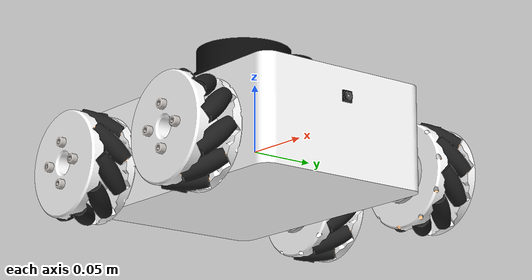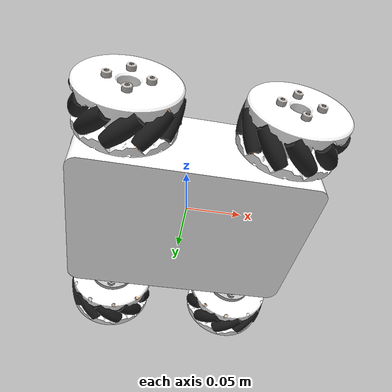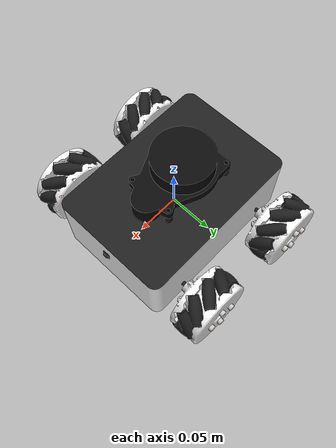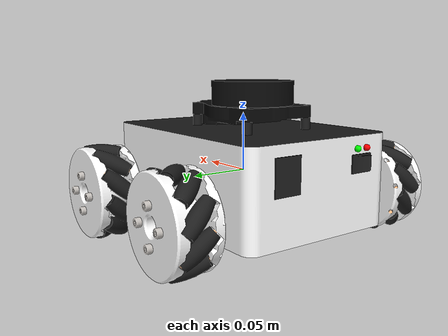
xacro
<?xml version="1.0"?>
<robot xmlns:xacro="http://www.ros.org/wiki/xacro" name="omnibot">

  <xacro:property name="base_length" value="0.200"/>
  <xacro:property name="base_width" value="0.140"/>
  <xacro:property name="base_height" value="0.0764"/>

  <xacro:property name="wheel_width" value="0.036"/>
  <xacro:property name="wheel_radius" value="0.039"/>

  <xacro:property name="wheel_x_offset" value="0.06"/>
  <xacro:property name="wheel_y_offset" value="${base_width/2 + wheel_width/2 + 0.0165}"/>
  <xacro:property name="wheel_z_offset" value="${-base_height/2 + 0.0228}"/>

  <xacro:property name="M_PI" value="3.14159"/>

  <xacro:include filename="$(find omnibot_description)/urdf/base.urdf.xacro"/>
  <xacro:include filename="$(find omnibot_description)/urdf/wheel.urdf.xacro"/>
  <xacro:include filename="$(find omnibot_description)/urdf/sensors.urdf.xacro"/>

  <xacro:omnibot_base/>

  <xacro:omnibot_wheel prefix="front_left">
    <origin xyz="${wheel_x_offset} ${wheel_y_offset} ${wheel_z_offset}" rpy="0.0 0.0 0.0"/>
  </xacro:omnibot_wheel>
  <xacro:omnibot_wheel prefix="front_right">
    <origin xyz="${wheel_x_offset} ${-wheel_y_offset} ${wheel_z_offset}" rpy="0.0 0.0 0.0"/>
  </xacro:omnibot_wheel>
  <xacro:omnibot_wheel prefix="back_left">
    <origin xyz="${-wheel_x_offset} ${wheel_y_offset} ${wheel_z_offset}" rpy="0.0 0.0 0.0"/>
  </xacro:omnibot_wheel>
  <xacro:omnibot_wheel prefix="back_right">
    <origin xyz="${-wheel_x_offset} ${-wheel_y_offset} ${wheel_z_offset}" rpy="0.0 0.0 0.0"/>
  </xacro:omnibot_wheel>

  <xacro:imu>
    <origin xyz="0.0 0.0 0.0" rpy="0.0 0.0 0.0"/>
  </xacro:imu>

  <xacro:lidar>
    <origin xyz="-0.013 0.0 ${base_height/2 + 0.024}" rpy="0.0 0.0 0.0"/>
  </xacro:lidar>

  <xacro:camera>
    <origin xyz="${base_length/2 - 0.0014} 0.0 0.018" rpy="0.0 0.0 0.0"/>
  </xacro:camera>

  <gazebo>
    <plugin filename="libignition-gazebo-joint-state-publisher-system.so"
            name="ignition::gazebo::systems::JointStatePublisher"/>

    <plugin
      filename="libOmniDrive.so"
      name="omni_drive::OmniDrive">
      <reference_frame>base_link</reference_frame>
      <frame_id>odom</frame_id>
      <child_frame_id>base_link</child_frame_id>
      <front_left_joint>front_left_wheel_joint</front_left_joint>
      <rear_left_joint>back_left_wheel_joint</rear_left_joint>
      <front_right_joint>front_right_wheel_joint</front_right_joint>
      <rear_right_joint>back_right_wheel_joint</rear_right_joint>
      <wheel_front_rear_separation>0.12</wheel_front_rear_separation>
      <wheel_right_left_separation>0.21</wheel_right_left_separation>
      <wheel_radius>0.039</wheel_radius>
      <min_velocity_linear>-1.0</min_velocity_linear>
      <max_velocity_linear>1.0</max_velocity_linear>
      <min_velocity_angular>-2.0</min_velocity_angular>
      <max_velocity_angular>2.0</max_velocity_angular>
    </plugin>

  </gazebo>

</robot>

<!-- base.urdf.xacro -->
<robot xmlns:xacro="http://www.ros.org/wiki/xacro" name="omnibot_base">

  <xacro:macro name="omnibot_base">

    <link name="base_link">
      <inertial>
        <origin xyz="0.0 0.0 -0.013" rpy="0.0 0.0 0.0"/>
        <mass value="2.067"/>
        <inertia ixx="0.00465053" ixy="1.014e-6" ixz="-1.413e-5" iyy="0.00771714" iyz="2.949e-6" izz="0.01114849"/>
      </inertial>
      <visual>
        <origin xyz="0.0 0.0 0.0" rpy="0.0 0.0 0.0"/>
        <geometry>
          <mesh filename="$(find omnibot_description)/meshes/base_link.dae"/>
        </geometry>
      </visual>
      <collision>
        <origin xyz="0.0 0.0 0.0" rpy="0.0 0.0 0.0"/>
        <geometry>
          <box size="${base_length} ${base_width} ${base_height}"/>
        </geometry>
      </collision>
    </link>

    <link name="base_footprint"/>

    <joint name="base_joint" type="fixed">
      <parent link="base_link"/>
      <child link="base_footprint"/>
      <origin xyz="0.0 0.0 ${-(wheel_radius-wheel_z_offset)}" rpy="0 0 0"/>
    </joint>

  </xacro:macro>

</robot>

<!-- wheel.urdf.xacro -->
<robot xmlns:xacro="http://www.ros.org/wiki/xacro" name="omnibot_wheel">

  <xacro:macro name="omnibot_wheel" params="prefix *joint_pose">
    <link name="${prefix}_wheel_link">
      <visual>
        <origin xyz="0.0 0.0 0.0" rpy="0.0 0.0 0.0"/>
        <geometry>
          <mesh filename="$(find omnibot_description)/meshes/mecanum_wheel_${prefix}.dae"/>
        </geometry>
      </visual>
      <collision>
        <origin xyz="0.0 0.0 0.0" rpy="${-M_PI/2} 0.0 0.0"/>
        <geometry>
          <cylinder radius="${wheel_radius}" length="${wheel_width}"/>
        </geometry>
      </collision>
      <inertial>
        <origin xyz="0.0 0.0 0.0" rpy="0.0 0.0 0.0"/>
        <mass value="0.120"/>
        <inertia ixx="6.278e-5" ixy="2.396e-10" ixz="4.709e-11" iyy="9.349e-5" iyz="-1.916e-10" izz="6.278e-5"/>
      </inertial>
    </link>

    <joint name="${prefix}_wheel_joint" type="continuous">
      <xacro:insert_block name="joint_pose"/>
      <parent link="base_link"/>
      <child link="${prefix}_wheel_link"/>
      <axis xyz="0 1 0" rpy="0.0 0.0 0.0"/>
    </joint>

    <gazebo reference="${prefix}_wheel_link">
      <mu1 value="0.0"/>
      <mu2 value="0.0"/>
    </gazebo>

  </xacro:macro>

</robot>

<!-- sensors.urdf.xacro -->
<robot xmlns:xacro="http://www.ros.org/wiki/xacro" name="omnibot_sensors">

  <!-- IMU macro -->
  <xacro:macro name="imu" params="*joint_pose">

    <link name="imu_link"/>

    <joint name="imu_joint" type="fixed">
      <parent link="base_link"/>
      <child link="imu_link"/>
      <xacro:insert_block name="joint_pose"/>
    </joint>

    <gazebo reference="imu_link">
      <sensor name="imu_sensor" type="imu">
        <always_on>1</always_on>
        <update_rate>30</update_rate>
        <topic>imu</topic>
        <visualize>true</visualize>
        <enable_metrics>true</enable_metrics>
        <angular_velocity>
          <x>
            <noise type="gaussian">
              <mean>0.0</mean>
              <stddev>2e-4</stddev>
              <bias_mean>0.0000075</bias_mean>
              <bias_stddev>0.0000008</bias_stddev>
            </noise>
          </x>
          <y>
            <noise type="gaussian">
              <mean>0.0</mean>
              <stddev>2e-4</stddev>
              <bias_mean>0.0000075</bias_mean>
              <bias_stddev>0.0000008</bias_stddev>
            </noise>
          </y>
          <z>
            <noise type="gaussian">
              <mean>0.0</mean>
              <stddev>2e-4</stddev>
              <bias_mean>0.0000075</bias_mean>
              <bias_stddev>0.0000008</bias_stddev>
            </noise>
          </z>
        </angular_velocity>
        <linear_acceleration>
          <x>
            <noise type="gaussian">
              <mean>0.0</mean>
              <stddev>1.7e-2</stddev>
              <bias_mean>0.1</bias_mean>
              <bias_stddev>0.001</bias_stddev>
            </noise>
          </x>
          <y>
            <noise type="gaussian">
              <mean>0.0</mean>
              <stddev>1.7e-2</stddev>
              <bias_mean>0.1</bias_mean>
              <bias_stddev>0.001</bias_stddev>
            </noise>
          </y>
          <z>
            <noise type="gaussian">
              <mean>0.0</mean>
              <stddev>1.7e-2</stddev>
              <bias_mean>0.1</bias_mean>
              <bias_stddev>0.001</bias_stddev>
            </noise>
          </z>
        </linear_acceleration>
      </sensor>
    </gazebo>
  </xacro:macro>

  <!-- Lidar macro -->
  <xacro:macro name="lidar" params="*joint_pose">

    <link name="lidar_link">
      <visual>
        <origin xyz="0 0 -0.014" rpy="0 0 0"/>
        <geometry>
          <mesh filename="$(find omnibot_description)/meshes/lidar.dae"/>
        </geometry>
      </visual>
      <collision>
        <origin xyz="0 0 -0.014" rpy="0 0 0"/>
        <geometry>
          <mesh filename="$(find omnibot_description)/meshes/lidar.stl"/>
        </geometry>
      </collision>
      <inertial>
        <origin xyz="0.009 0 -0.04" rpy="0 0 0"/>
        <mass value="0.165"/>
        <inertia ixx="6.790e-5" ixy="2.124e-5" ixz="0" iyy="1.305e-4" iyz="0" izz="1.572e-4" />
      </inertial>
    </link>

    <joint name="lidar_joint" type="fixed">
      <parent link="base_link"/>
      <child link="lidar_link"/>
      <xacro:insert_block name="joint_pose"/>
    </joint>

    <gazebo reference="lidar_link">

      <sensor name='gpu_lidar' type='gpu_lidar'>"
        <topic>lidar</topic>
        <update_rate>30</update_rate>
        <ray>
          <scan>
            <horizontal>
              <samples>720</samples>
              <resolution>1</resolution>
              <min_angle>-3.1415</min_angle>
              <max_angle>3.1415</max_angle>
            </horizontal>
            <vertical>
              <samples>1</samples>
              <resolution>0.01</resolution>
              <min_angle>0</min_angle>
              <max_angle>0</max_angle>
            </vertical>
          </scan>
          <range>
            <min>0.05</min>
            <max>8.0</max>
            <resolution>0.01</resolution>
          </range>
          <noise>
            <type>gaussian</type>
            <mean>0.0.0</mean>
            <stddev>0.01</stddev>
          </noise>
        </ray>
        <always_on>1</always_on>
        <visualize>true</visualize>
      </sensor>
    </gazebo>

  </xacro:macro>

  <!-- Camera macro -->
  <xacro:macro name="camera" params="*joint_pose">

    <link name="camera_link">
      <inertial>
        <origin xyz="0.0 0.0 0.0" rpy="0.0 0.0 0.0"/>
        <mass value="3.3e-3"/>
        <inertia ixx="1e-6" ixy="0.0" ixz="0.0" iyy="1e-6" iyz="0.0" izz="1e-6"/>
      </inertial>
      <visual>
        <origin xyz="0.0 0.0 0.0" rpy="0.0 0.0 0.0"/>
        <geometry>
          <mesh filename="$(find omnibot_description)/meshes/raspicam.dae"/>
        </geometry>
      </visual>
      <collision>
        <origin xyz="0.0 0.0 0.0" rpy="0.0 0.0 0.0"/>
        <geometry>
          <box size="0.001 0.025 0.024"/>
        </geometry>
      </collision>
    </link>

    <joint name="camera_joint" type="fixed">
      <parent link="base_link"/>
      <child link="camera_link"/>
      <xacro:insert_block name="joint_pose"/>
    </joint>

  </xacro:macro>

</robot>
